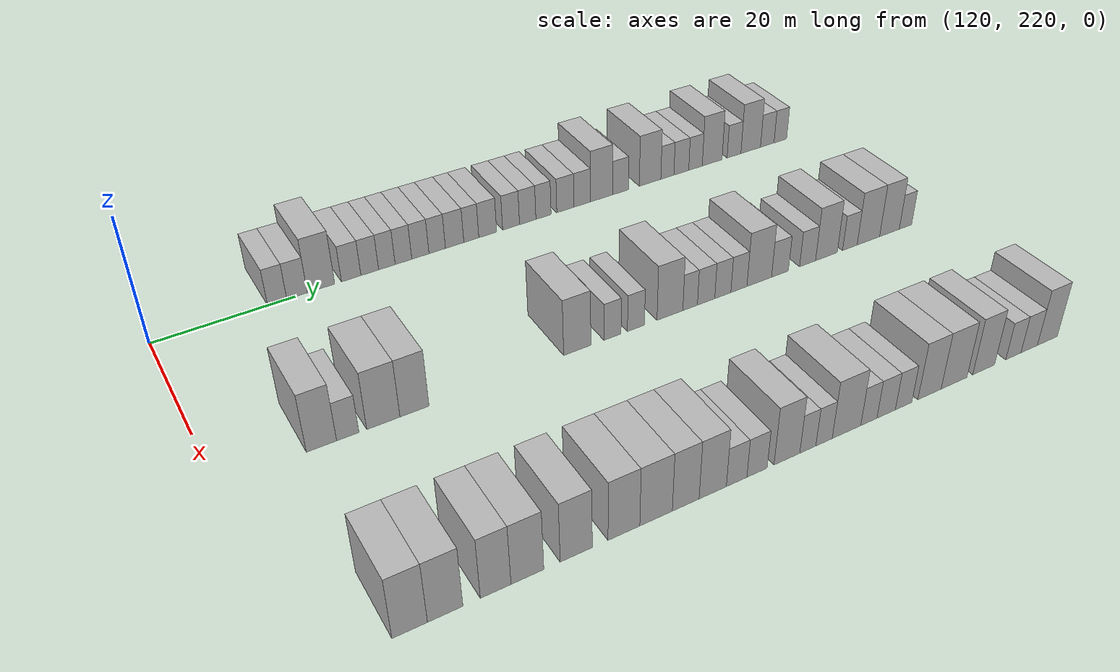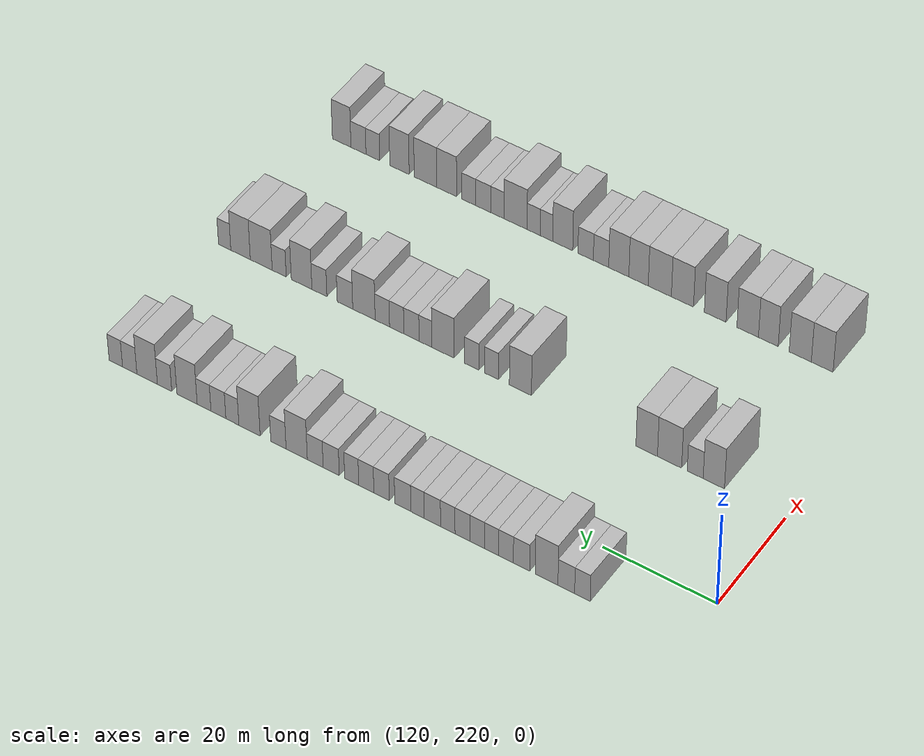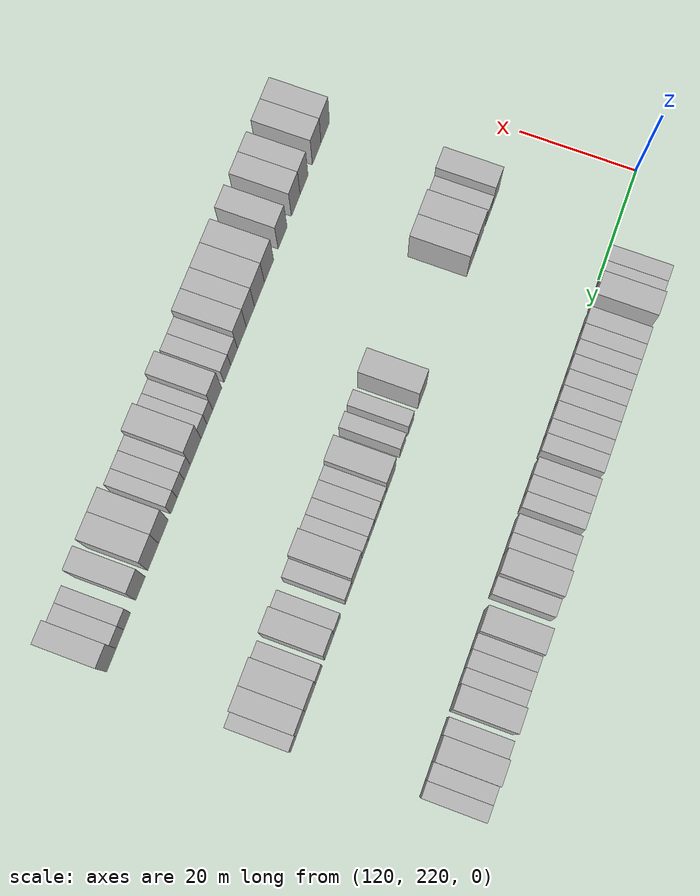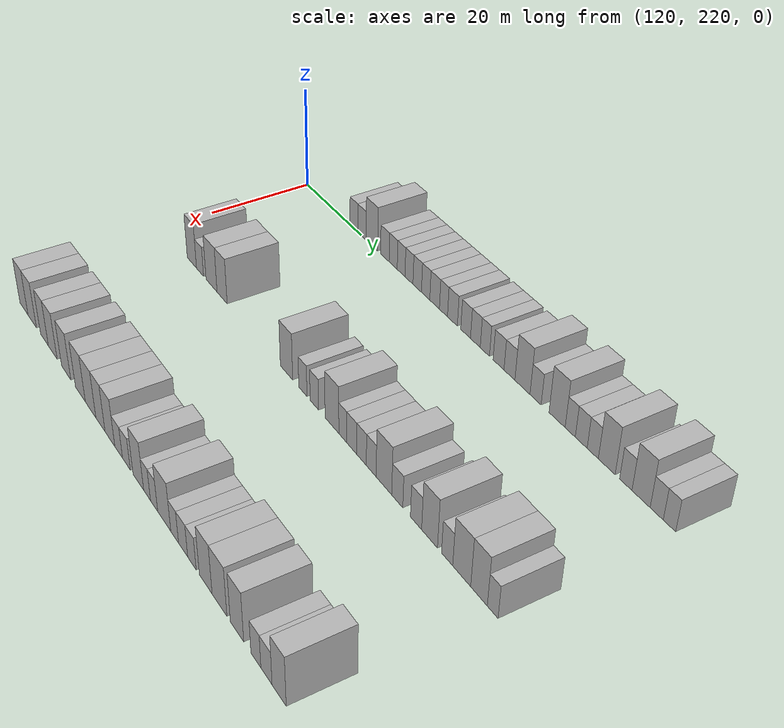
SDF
<sdf version="1.6">
 <world name="default">
  <model name="building_857">
   <static>1</static>
   <pose>115.0000 237.3899 0 0.000000 0.000000 0.000000</pose>
   <link name="link">
    <pose>0 0 3.00 0 0 0</pose>
    <collision name="collision"><geometry><box><size>10.0000 2.7430 6.0000</size></box></geometry></collision>
    <visual name="visual">
     <cast_shadows>0</cast_shadows>
     <geometry><box><size>10.0000 2.7430 6.0000</size></box></geometry>
     <material>
      <script>
       <uri>model://HANNAS_wall/materials/scripts</uri>
       <uri>model://HANNAS_wall/materials/textures</uri>
       <name>vrc/HANNAS_wall</name>
      </script>
     </material>
    </visual>
   </link>
  </model>
  <model name="building_858">
   <static>1</static>
   <pose>115.0000 240.2391 0 0.000000 0.000000 0.000000</pose>
   <link name="link">
    <pose>0 0 3.00 0 0 0</pose>
    <collision name="collision"><geometry><box><size>10.0000 2.9555 6.0000</size></box></geometry></collision>
    <visual name="visual">
     <cast_shadows>0</cast_shadows>
     <geometry><box><size>10.0000 2.9555 6.0000</size></box></geometry>
     <material>
      <script>
       <uri>model://HANNAS_wall/materials/scripts</uri>
       <uri>model://HANNAS_wall/materials/textures</uri>
       <name>vrc/HANNAS_wall</name>
      </script>
     </material>
    </visual>
   </link>
  </model>
  <model name="building_859">
   <static>1</static>
   <pose>115.0000 243.7226 0 0.000000 0.000000 0.000000</pose>
   <link name="link">
    <pose>0 0 4.50 0 0 0</pose>
    <collision name="collision"><geometry><box><size>10.0000 4.0115 9.0000</size></box></geometry></collision>
    <visual name="visual">
     <cast_shadows>0</cast_shadows>
     <geometry><box><size>10.0000 4.0115 9.0000</size></box></geometry>
     <material>
      <script>
       <uri>model://HANNAS_wall/materials/scripts</uri>
       <uri>model://HANNAS_wall/materials/textures</uri>
       <name>vrc/HANNAS_wall</name>
      </script>
     </material>
    </visual>
   </link>
  </model>
  <model name="building_860">
   <static>1</static>
   <pose>115.0000 248.1830 0 0.000000 0.000000 0.000000</pose>
   <link name="link">
    <pose>0 0 3.00 0 0 0</pose>
    <collision name="collision"><geometry><box><size>10.0000 2.9092 6.0000</size></box></geometry></collision>
    <visual name="visual">
     <cast_shadows>0</cast_shadows>
     <geometry><box><size>10.0000 2.9092 6.0000</size></box></geometry>
     <material>
      <script>
       <uri>model://HANNAS_wall/materials/scripts</uri>
       <uri>model://HANNAS_wall/materials/textures</uri>
       <name>vrc/HANNAS_wall</name>
      </script>
     </material>
    </visual>
   </link>
  </model>
  <model name="building_861">
   <static>1</static>
   <pose>115.0000 250.9758 0 0.000000 0.000000 0.000000</pose>
   <link name="link">
    <pose>0 0 3.00 0 0 0</pose>
    <collision name="collision"><geometry><box><size>10.0000 2.6764 6.0000</size></box></geometry></collision>
    <visual name="visual">
     <cast_shadows>0</cast_shadows>
     <geometry><box><size>10.0000 2.6764 6.0000</size></box></geometry>
     <material>
      <script>
       <uri>model://HANNAS_wall/materials/scripts</uri>
       <uri>model://HANNAS_wall/materials/textures</uri>
       <name>vrc/HANNAS_wall</name>
      </script>
     </material>
    </visual>
   </link>
  </model>
  <model name="building_862">
   <static>1</static>
   <pose>115.0000 253.5853 0 0.000000 0.000000 0.000000</pose>
   <link name="link">
    <pose>0 0 3.00 0 0 0</pose>
    <collision name="collision"><geometry><box><size>10.0000 2.5428 6.0000</size></box></geometry></collision>
    <visual name="visual">
     <cast_shadows>0</cast_shadows>
     <geometry><box><size>10.0000 2.5428 6.0000</size></box></geometry>
     <material>
      <script>
       <uri>model://HANNAS_wall/materials/scripts</uri>
       <uri>model://HANNAS_wall/materials/textures</uri>
       <name>vrc/HANNAS_wall</name>
      </script>
     </material>
    </visual>
   </link>
  </model>
  <model name="building_863">
   <static>1</static>
   <pose>115.0000 256.1503 0 0.000000 0.000000 0.000000</pose>
   <link name="link">
    <pose>0 0 3.00 0 0 0</pose>
    <collision name="collision"><geometry><box><size>10.0000 2.5871 6.0000</size></box></geometry></collision>
    <visual name="visual">
     <cast_shadows>0</cast_shadows>
     <geometry><box><size>10.0000 2.5871 6.0000</size></box></geometry>
     <material>
      <script>
       <uri>model://HANNAS_wall/materials/scripts</uri>
       <uri>model://HANNAS_wall/materials/textures</uri>
       <name>vrc/HANNAS_wall</name>
      </script>
     </material>
    </visual>
   </link>
  </model>
  <model name="building_864">
   <static>1</static>
   <pose>115.0000 258.7925 0 0.000000 0.000000 0.000000</pose>
   <link name="link">
    <pose>0 0 3.00 0 0 0</pose>
    <collision name="collision"><geometry><box><size>10.0000 2.6972 6.0000</size></box></geometry></collision>
    <visual name="visual">
     <cast_shadows>0</cast_shadows>
     <geometry><box><size>10.0000 2.6972 6.0000</size></box></geometry>
     <material>
      <script>
       <uri>model://HANNAS_wall/materials/scripts</uri>
       <uri>model://HANNAS_wall/materials/textures</uri>
       <name>vrc/HANNAS_wall</name>
      </script>
     </material>
    </visual>
   </link>
  </model>
  <model name="building_865">
   <static>1</static>
   <pose>115.0000 261.4494 0 0.000000 0.000000 0.000000</pose>
   <link name="link">
    <pose>0 0 3.00 0 0 0</pose>
    <collision name="collision"><geometry><box><size>10.0000 2.6167 6.0000</size></box></geometry></collision>
    <visual name="visual">
     <cast_shadows>0</cast_shadows>
     <geometry><box><size>10.0000 2.6167 6.0000</size></box></geometry>
     <material>
      <script>
       <uri>model://HANNAS_wall/materials/scripts</uri>
       <uri>model://HANNAS_wall/materials/textures</uri>
       <name>vrc/HANNAS_wall</name>
      </script>
     </material>
    </visual>
   </link>
  </model>
  <model name="building_866">
   <static>1</static>
   <pose>115.0000 264.2385 0 0.000000 0.000000 0.000000</pose>
   <link name="link">
    <pose>0 0 3.00 0 0 0</pose>
    <collision name="collision"><geometry><box><size>10.0000 2.9614 6.0000</size></box></geometry></collision>
    <visual name="visual">
     <cast_shadows>0</cast_shadows>
     <geometry><box><size>10.0000 2.9614 6.0000</size></box></geometry>
     <material>
      <script>
       <uri>model://HANNAS_wall/materials/scripts</uri>
       <uri>model://HANNAS_wall/materials/textures</uri>
       <name>vrc/HANNAS_wall</name>
      </script>
     </material>
    </visual>
   </link>
  </model>
  <model name="building_867">
   <static>1</static>
   <pose>115.0000 266.9425 0 0.000000 0.000000 0.000000</pose>
   <link name="link">
    <pose>0 0 3.00 0 0 0</pose>
    <collision name="collision"><geometry><box><size>10.0000 2.4467 6.0000</size></box></geometry></collision>
    <visual name="visual">
     <cast_shadows>0</cast_shadows>
     <geometry><box><size>10.0000 2.4467 6.0000</size></box></geometry>
     <material>
      <script>
       <uri>model://HANNAS_wall/materials/scripts</uri>
       <uri>model://HANNAS_wall/materials/textures</uri>
       <name>vrc/HANNAS_wall</name>
      </script>
     </material>
    </visual>
   </link>
  </model>
  <model name="building_868">
   <static>1</static>
   <pose>115.0000 269.6398 0 0.000000 0.000000 0.000000</pose>
   <link name="link">
    <pose>0 0 3.00 0 0 0</pose>
    <collision name="collision"><geometry><box><size>10.0000 2.9478 6.0000</size></box></geometry></collision>
    <visual name="visual">
     <cast_shadows>0</cast_shadows>
     <geometry><box><size>10.0000 2.9478 6.0000</size></box></geometry>
     <material>
      <script>
       <uri>model://HANNAS_wall/materials/scripts</uri>
       <uri>model://HANNAS_wall/materials/textures</uri>
       <name>vrc/HANNAS_wall</name>
      </script>
     </material>
    </visual>
   </link>
  </model>
  <model name="building_869">
   <static>1</static>
   <pose>115.0000 273.5316 0 0.000000 0.000000 0.000000</pose>
   <link name="link">
    <pose>0 0 3.00 0 0 0</pose>
    <collision name="collision"><geometry><box><size>10.0000 2.8359 6.0000</size></box></geometry></collision>
    <visual name="visual">
     <cast_shadows>0</cast_shadows>
     <geometry><box><size>10.0000 2.8359 6.0000</size></box></geometry>
     <material>
      <script>
       <uri>model://HANNAS_wall/materials/scripts</uri>
       <uri>model://HANNAS_wall/materials/textures</uri>
       <name>vrc/HANNAS_wall</name>
      </script>
     </material>
    </visual>
   </link>
  </model>
  <model name="building_870">
   <static>1</static>
   <pose>115.0000 276.3442 0 0.000000 0.000000 0.000000</pose>
   <link name="link">
    <pose>0 0 3.00 0 0 0</pose>
    <collision name="collision"><geometry><box><size>10.0000 2.7893 6.0000</size></box></geometry></collision>
    <visual name="visual">
     <cast_shadows>0</cast_shadows>
     <geometry><box><size>10.0000 2.7893 6.0000</size></box></geometry>
     <material>
      <script>
       <uri>model://HANNAS_wall/materials/scripts</uri>
       <uri>model://HANNAS_wall/materials/textures</uri>
       <name>vrc/HANNAS_wall</name>
      </script>
     </material>
    </visual>
   </link>
  </model>
  <model name="building_871">
   <static>1</static>
   <pose>115.0000 279.0400 0 0.000000 0.000000 0.000000</pose>
   <link name="link">
    <pose>0 0 3.00 0 0 0</pose>
    <collision name="collision"><geometry><box><size>10.0000 2.6022 6.0000</size></box></geometry></collision>
    <visual name="visual">
     <cast_shadows>0</cast_shadows>
     <geometry><box><size>10.0000 2.6022 6.0000</size></box></geometry>
     <material>
      <script>
       <uri>model://HANNAS_wall/materials/scripts</uri>
       <uri>model://HANNAS_wall/materials/textures</uri>
       <name>vrc/HANNAS_wall</name>
      </script>
     </material>
    </visual>
   </link>
  </model>
  <model name="building_872">
   <static>1</static>
   <pose>115.0000 282.8386 0 0.000000 0.000000 0.000000</pose>
   <link name="link">
    <pose>0 0 3.00 0 0 0</pose>
    <collision name="collision"><geometry><box><size>10.0000 2.9951 6.0000</size></box></geometry></collision>
    <visual name="visual">
     <cast_shadows>0</cast_shadows>
     <geometry><box><size>10.0000 2.9951 6.0000</size></box></geometry>
     <material>
      <script>
       <uri>model://HANNAS_wall/materials/scripts</uri>
       <uri>model://HANNAS_wall/materials/textures</uri>
       <name>vrc/HANNAS_wall</name>
      </script>
     </material>
    </visual>
   </link>
  </model>
  <model name="building_873">
   <static>1</static>
   <pose>115.0000 285.8130 0 0.000000 0.000000 0.000000</pose>
   <link name="link">
    <pose>0 0 3.00 0 0 0</pose>
    <collision name="collision"><geometry><box><size>10.0000 2.9536 6.0000</size></box></geometry></collision>
    <visual name="visual">
     <cast_shadows>0</cast_shadows>
     <geometry><box><size>10.0000 2.9536 6.0000</size></box></geometry>
     <material>
      <script>
       <uri>model://HANNAS_wall/materials/scripts</uri>
       <uri>model://HANNAS_wall/materials/textures</uri>
       <name>vrc/HANNAS_wall</name>
      </script>
     </material>
    </visual>
   </link>
  </model>
  <model name="building_874">
   <static>1</static>
   <pose>115.0000 289.2796 0 0.000000 0.000000 0.000000</pose>
   <link name="link">
    <pose>0 0 4.50 0 0 0</pose>
    <collision name="collision"><geometry><box><size>10.0000 3.9797 9.0000</size></box></geometry></collision>
    <visual name="visual">
     <cast_shadows>0</cast_shadows>
     <geometry><box><size>10.0000 3.9797 9.0000</size></box></geometry>
     <material>
      <script>
       <uri>model://HANNAS_wall/materials/scripts</uri>
       <uri>model://HANNAS_wall/materials/textures</uri>
       <name>vrc/HANNAS_wall</name>
      </script>
     </material>
    </visual>
   </link>
  </model>
  <model name="building_875">
   <static>1</static>
   <pose>115.0000 292.7081 0 0.000000 0.000000 0.000000</pose>
   <link name="link">
    <pose>0 0 3.00 0 0 0</pose>
    <collision name="collision"><geometry><box><size>10.0000 2.8772 6.0000</size></box></geometry></collision>
    <visual name="visual">
     <cast_shadows>0</cast_shadows>
     <geometry><box><size>10.0000 2.8772 6.0000</size></box></geometry>
     <material>
      <script>
       <uri>model://HANNAS_wall/materials/scripts</uri>
       <uri>model://HANNAS_wall/materials/textures</uri>
       <name>vrc/HANNAS_wall</name>
      </script>
     </material>
    </visual>
   </link>
  </model>
  <model name="building_876">
   <static>1</static>
   <pose>115.0000 298.1543 0 0.000000 0.000000 0.000000</pose>
   <link name="link">
    <pose>0 0 4.50 0 0 0</pose>
    <collision name="collision"><geometry><box><size>10.0000 4.0152 9.0000</size></box></geometry></collision>
    <visual name="visual">
     <cast_shadows>0</cast_shadows>
     <geometry><box><size>10.0000 4.0152 9.0000</size></box></geometry>
     <material>
      <script>
       <uri>model://HANNAS_wall/materials/scripts</uri>
       <uri>model://HANNAS_wall/materials/textures</uri>
       <name>vrc/HANNAS_wall</name>
      </script>
     </material>
    </visual>
   </link>
  </model>
  <model name="building_877">
   <static>1</static>
   <pose>115.0000 301.4001 0 0.000000 0.000000 0.000000</pose>
   <link name="link">
    <pose>0 0 3.00 0 0 0</pose>
    <collision name="collision"><geometry><box><size>10.0000 2.4764 6.0000</size></box></geometry></collision>
    <visual name="visual">
     <cast_shadows>0</cast_shadows>
     <geometry><box><size>10.0000 2.4764 6.0000</size></box></geometry>
     <material>
      <script>
       <uri>model://HANNAS_wall/materials/scripts</uri>
       <uri>model://HANNAS_wall/materials/textures</uri>
       <name>vrc/HANNAS_wall</name>
      </script>
     </material>
    </visual>
   </link>
  </model>
  <model name="building_878">
   <static>1</static>
   <pose>115.0000 304.0548 0 0.000000 0.000000 0.000000</pose>
   <link name="link">
    <pose>0 0 3.00 0 0 0</pose>
    <collision name="collision"><geometry><box><size>10.0000 2.8332 6.0000</size></box></geometry></collision>
    <visual name="visual">
     <cast_shadows>0</cast_shadows>
     <geometry><box><size>10.0000 2.8332 6.0000</size></box></geometry>
     <material>
      <script>
       <uri>model://HANNAS_wall/materials/scripts</uri>
       <uri>model://HANNAS_wall/materials/textures</uri>
       <name>vrc/HANNAS_wall</name>
      </script>
     </material>
    </visual>
   </link>
  </model>
  <model name="building_879">
   <static>1</static>
   <pose>115.0000 306.7871 0 0.000000 0.000000 0.000000</pose>
   <link name="link">
    <pose>0 0 3.00 0 0 0</pose>
    <collision name="collision"><geometry><box><size>10.0000 2.6313 6.0000</size></box></geometry></collision>
    <visual name="visual">
     <cast_shadows>0</cast_shadows>
     <geometry><box><size>10.0000 2.6313 6.0000</size></box></geometry>
     <material>
      <script>
       <uri>model://HANNAS_wall/materials/scripts</uri>
       <uri>model://HANNAS_wall/materials/textures</uri>
       <name>vrc/HANNAS_wall</name>
      </script>
     </material>
    </visual>
   </link>
  </model>
  <model name="building_880">
   <static>1</static>
   <pose>115.0000 310.0401 0 0.000000 0.000000 0.000000</pose>
   <link name="link">
    <pose>0 0 4.50 0 0 0</pose>
    <collision name="collision"><geometry><box><size>10.0000 3.8747 9.0000</size></box></geometry></collision>
    <visual name="visual">
     <cast_shadows>0</cast_shadows>
     <geometry><box><size>10.0000 3.8747 9.0000</size></box></geometry>
     <material>
      <script>
       <uri>model://HANNAS_wall/materials/scripts</uri>
       <uri>model://HANNAS_wall/materials/textures</uri>
       <name>vrc/HANNAS_wall</name>
      </script>
     </material>
    </visual>
   </link>
  </model>
  <model name="building_881">
   <static>1</static>
   <pose>115.0000 314.3609 0 0.000000 0.000000 0.000000</pose>
   <link name="link">
    <pose>0 0 3.00 0 0 0</pose>
    <collision name="collision"><geometry><box><size>10.0000 2.7669 6.0000</size></box></geometry></collision>
    <visual name="visual">
     <cast_shadows>0</cast_shadows>
     <geometry><box><size>10.0000 2.7669 6.0000</size></box></geometry>
     <material>
      <script>
       <uri>model://HANNAS_wall/materials/scripts</uri>
       <uri>model://HANNAS_wall/materials/textures</uri>
       <name>vrc/HANNAS_wall</name>
      </script>
     </material>
    </visual>
   </link>
  </model>
  <model name="building_882">
   <static>1</static>
   <pose>115.0000 317.7253 0 0.000000 0.000000 0.000000</pose>
   <link name="link">
    <pose>0 0 4.50 0 0 0</pose>
    <collision name="collision"><geometry><box><size>10.0000 3.9618 9.0000</size></box></geometry></collision>
    <visual name="visual">
     <cast_shadows>0</cast_shadows>
     <geometry><box><size>10.0000 3.9618 9.0000</size></box></geometry>
     <material>
      <script>
       <uri>model://HANNAS_wall/materials/scripts</uri>
       <uri>model://HANNAS_wall/materials/textures</uri>
       <name>vrc/HANNAS_wall</name>
      </script>
     </material>
    </visual>
   </link>
  </model>
  <model name="building_883">
   <static>1</static>
   <pose>115.0000 321.1003 0 0.000000 0.000000 0.000000</pose>
   <link name="link">
    <pose>0 0 3.00 0 0 0</pose>
    <collision name="collision"><geometry><box><size>10.0000 2.7882 6.0000</size></box></geometry></collision>
    <visual name="visual">
     <cast_shadows>0</cast_shadows>
     <geometry><box><size>10.0000 2.7882 6.0000</size></box></geometry>
     <material>
      <script>
       <uri>model://HANNAS_wall/materials/scripts</uri>
       <uri>model://HANNAS_wall/materials/textures</uri>
       <name>vrc/HANNAS_wall</name>
      </script>
     </material>
    </visual>
   </link>
  </model>
  <model name="building_884">
   <static>1</static>
   <pose>115.0000 323.7933 0 0.000000 0.000000 0.000000</pose>
   <link name="link">
    <pose>0 0 3.00 0 0 0</pose>
    <collision name="collision"><geometry><box><size>10.0000 2.5979 6.0000</size></box></geometry></collision>
    <visual name="visual">
     <cast_shadows>0</cast_shadows>
     <geometry><box><size>10.0000 2.5979 6.0000</size></box></geometry>
     <material>
      <script>
       <uri>model://HANNAS_wall/materials/scripts</uri>
       <uri>model://HANNAS_wall/materials/textures</uri>
       <name>vrc/HANNAS_wall</name>
      </script>
     </material>
    </visual>
   </link>
  </model>
  <model name="building_1082">
   <static>1</static>
   <pose>145.0000 232.7837 0 0.000000 0.000000 0.000000</pose>
   <link name="link">
    <pose>0 0 4.50 0 0 0</pose>
    <collision name="collision"><geometry><box><size>10.0000 3.7882 9.0000</size></box></geometry></collision>
    <visual name="visual">
     <cast_shadows>0</cast_shadows>
     <geometry><box><size>10.0000 3.7882 9.0000</size></box></geometry>
     <material>
      <script>
       <uri>model://HANNAS_wall/materials/scripts</uri>
       <uri>model://HANNAS_wall/materials/textures</uri>
       <name>vrc/HANNAS_wall</name>
      </script>
     </material>
    </visual>
   </link>
  </model>
  <model name="building_1083">
   <static>1</static>
   <pose>145.0000 236.1016 0 0.000000 0.000000 0.000000</pose>
   <link name="link">
    <pose>0 0 3.00 0 0 0</pose>
    <collision name="collision"><geometry><box><size>10.0000 2.8476 6.0000</size></box></geometry></collision>
    <visual name="visual">
     <cast_shadows>0</cast_shadows>
     <geometry><box><size>10.0000 2.8476 6.0000</size></box></geometry>
     <material>
      <script>
       <uri>model://HANNAS_wall/materials/scripts</uri>
       <uri>model://HANNAS_wall/materials/textures</uri>
       <name>vrc/HANNAS_wall</name>
      </script>
     </material>
    </visual>
   </link>
  </model>
  <model name="building_1084">
   <static>1</static>
   <pose>145.0000 240.6982 0 0.000000 0.000000 0.000000</pose>
   <link name="link">
    <pose>0 0 4.50 0 0 0</pose>
    <collision name="collision"><geometry><box><size>10.0000 4.3457 9.0000</size></box></geometry></collision>
    <visual name="visual">
     <cast_shadows>0</cast_shadows>
     <geometry><box><size>10.0000 4.3457 9.0000</size></box></geometry>
     <material>
      <script>
       <uri>model://HANNAS_wall/materials/scripts</uri>
       <uri>model://HANNAS_wall/materials/textures</uri>
       <name>vrc/HANNAS_wall</name>
      </script>
     </material>
    </visual>
   </link>
  </model>
  <model name="building_1085">
   <static>1</static>
   <pose>145.0000 244.8110 0 0.000000 0.000000 0.000000</pose>
   <link name="link">
    <pose>0 0 4.50 0 0 0</pose>
    <collision name="collision"><geometry><box><size>10.0000 3.8800 9.0000</size></box></geometry></collision>
    <visual name="visual">
     <cast_shadows>0</cast_shadows>
     <geometry><box><size>10.0000 3.8800 9.0000</size></box></geometry>
     <material>
      <script>
       <uri>model://HANNAS_wall/materials/scripts</uri>
       <uri>model://HANNAS_wall/materials/textures</uri>
       <name>vrc/HANNAS_wall</name>
      </script>
     </material>
    </visual>
   </link>
  </model>
  <model name="building_1086">
   <static>1</static>
   <pose>145.0000 267.9073 0 0.000000 0.000000 0.000000</pose>
   <link name="link">
    <pose>0 0 4.50 0 0 0</pose>
    <collision name="collision"><geometry><box><size>10.0000 4.1042 9.0000</size></box></geometry></collision>
    <visual name="visual">
     <cast_shadows>0</cast_shadows>
     <geometry><box><size>10.0000 4.1042 9.0000</size></box></geometry>
     <material>
      <script>
       <uri>model://HANNAS_wall/materials/scripts</uri>
       <uri>model://HANNAS_wall/materials/textures</uri>
       <name>vrc/HANNAS_wall</name>
      </script>
     </material>
    </visual>
   </link>
  </model>
  <model name="building_1087">
   <static>1</static>
   <pose>145.0000 273.2808 0 0.000000 0.000000 0.000000</pose>
   <link name="link">
    <pose>0 0 3.00 0 0 0</pose>
    <collision name="collision"><geometry><box><size>10.0000 2.6428 6.0000</size></box></geometry></collision>
    <visual name="visual">
     <cast_shadows>0</cast_shadows>
     <geometry><box><size>10.0000 2.6428 6.0000</size></box></geometry>
     <material>
      <script>
       <uri>model://HANNAS_wall/materials/scripts</uri>
       <uri>model://HANNAS_wall/materials/textures</uri>
       <name>vrc/HANNAS_wall</name>
      </script>
     </material>
    </visual>
   </link>
  </model>
  <model name="building_1088">
   <static>1</static>
   <pose>145.0000 276.9431 0 0.000000 0.000000 0.000000</pose>
   <link name="link">
    <pose>0 0 3.00 0 0 0</pose>
    <collision name="collision"><geometry><box><size>10.0000 2.6817 6.0000</size></box></geometry></collision>
    <visual name="visual">
     <cast_shadows>0</cast_shadows>
     <geometry><box><size>10.0000 2.6817 6.0000</size></box></geometry>
     <material>
      <script>
       <uri>model://HANNAS_wall/materials/scripts</uri>
       <uri>model://HANNAS_wall/materials/textures</uri>
       <name>vrc/HANNAS_wall</name>
      </script>
     </material>
    </visual>
   </link>
  </model>
  <model name="building_1089">
   <static>1</static>
   <pose>145.0000 282.3769 0 0.000000 0.000000 0.000000</pose>
   <link name="link">
    <pose>0 0 4.50 0 0 0</pose>
    <collision name="collision"><geometry><box><size>10.0000 4.1860 9.0000</size></box></geometry></collision>
    <visual name="visual">
     <cast_shadows>0</cast_shadows>
     <geometry><box><size>10.0000 4.1860 9.0000</size></box></geometry>
     <material>
      <script>
       <uri>model://HANNAS_wall/materials/scripts</uri>
       <uri>model://HANNAS_wall/materials/textures</uri>
       <name>vrc/HANNAS_wall</name>
      </script>
     </material>
    </visual>
   </link>
  </model>
  <model name="building_1090">
   <static>1</static>
   <pose>145.0000 285.6719 0 0.000000 0.000000 0.000000</pose>
   <link name="link">
    <pose>0 0 3.00 0 0 0</pose>
    <collision name="collision"><geometry><box><size>10.0000 2.4039 6.0000</size></box></geometry></collision>
    <visual name="visual">
     <cast_shadows>0</cast_shadows>
     <geometry><box><size>10.0000 2.4039 6.0000</size></box></geometry>
     <material>
      <script>
       <uri>model://HANNAS_wall/materials/scripts</uri>
       <uri>model://HANNAS_wall/materials/textures</uri>
       <name>vrc/HANNAS_wall</name>
      </script>
     </material>
    </visual>
   </link>
  </model>
  <model name="building_1091">
   <static>1</static>
   <pose>145.0000 288.3167 0 0.000000 0.000000 0.000000</pose>
   <link name="link">
    <pose>0 0 3.00 0 0 0</pose>
    <collision name="collision"><geometry><box><size>10.0000 2.8856 6.0000</size></box></geometry></collision>
    <visual name="visual">
     <cast_shadows>0</cast_shadows>
     <geometry><box><size>10.0000 2.8856 6.0000</size></box></geometry>
     <material>
      <script>
       <uri>model://HANNAS_wall/materials/scripts</uri>
       <uri>model://HANNAS_wall/materials/textures</uri>
       <name>vrc/HANNAS_wall</name>
      </script>
     </material>
    </visual>
   </link>
  </model>
  <model name="building_1092">
   <static>1</static>
   <pose>145.0000 291.1226 0 0.000000 0.000000 0.000000</pose>
   <link name="link">
    <pose>0 0 3.00 0 0 0</pose>
    <collision name="collision"><geometry><box><size>10.0000 2.7263 6.0000</size></box></geometry></collision>
    <visual name="visual">
     <cast_shadows>0</cast_shadows>
     <geometry><box><size>10.0000 2.7263 6.0000</size></box></geometry>
     <material>
      <script>
       <uri>model://HANNAS_wall/materials/scripts</uri>
       <uri>model://HANNAS_wall/materials/textures</uri>
       <name>vrc/HANNAS_wall</name>
      </script>
     </material>
    </visual>
   </link>
  </model>
  <model name="building_1093">
   <static>1</static>
   <pose>145.0000 293.8618 0 0.000000 0.000000 0.000000</pose>
   <link name="link">
    <pose>0 0 3.00 0 0 0</pose>
    <collision name="collision"><geometry><box><size>10.0000 2.7520 6.0000</size></box></geometry></collision>
    <visual name="visual">
     <cast_shadows>0</cast_shadows>
     <geometry><box><size>10.0000 2.7520 6.0000</size></box></geometry>
     <material>
      <script>
       <uri>model://HANNAS_wall/materials/scripts</uri>
       <uri>model://HANNAS_wall/materials/textures</uri>
       <name>vrc/HANNAS_wall</name>
      </script>
     </material>
    </visual>
   </link>
  </model>
  <model name="building_1094">
   <static>1</static>
   <pose>145.0000 297.3820 0 0.000000 0.000000 0.000000</pose>
   <link name="link">
    <pose>0 0 4.50 0 0 0</pose>
    <collision name="collision"><geometry><box><size>10.0000 4.2884 9.0000</size></box></geometry></collision>
    <visual name="visual">
     <cast_shadows>0</cast_shadows>
     <geometry><box><size>10.0000 4.2884 9.0000</size></box></geometry>
     <material>
      <script>
       <uri>model://HANNAS_wall/materials/scripts</uri>
       <uri>model://HANNAS_wall/materials/textures</uri>
       <name>vrc/HANNAS_wall</name>
      </script>
     </material>
    </visual>
   </link>
  </model>
  <model name="building_1095">
   <static>1</static>
   <pose>145.0000 301.0168 0 0.000000 0.000000 0.000000</pose>
   <link name="link">
    <pose>0 0 3.00 0 0 0</pose>
    <collision name="collision"><geometry><box><size>10.0000 2.9813 6.0000</size></box></geometry></collision>
    <visual name="visual">
     <cast_shadows>0</cast_shadows>
     <geometry><box><size>10.0000 2.9813 6.0000</size></box></geometry>
     <material>
      <script>
       <uri>model://HANNAS_wall/materials/scripts</uri>
       <uri>model://HANNAS_wall/materials/textures</uri>
       <name>vrc/HANNAS_wall</name>
      </script>
     </material>
    </visual>
   </link>
  </model>
  <model name="building_1096">
   <static>1</static>
   <pose>145.0000 305.9564 0 0.000000 0.000000 0.000000</pose>
   <link name="link">
    <pose>0 0 3.00 0 0 0</pose>
    <collision name="collision"><geometry><box><size>10.0000 2.8980 6.0000</size></box></geometry></collision>
    <visual name="visual">
     <cast_shadows>0</cast_shadows>
     <geometry><box><size>10.0000 2.8980 6.0000</size></box></geometry>
     <material>
      <script>
       <uri>model://HANNAS_wall/materials/scripts</uri>
       <uri>model://HANNAS_wall/materials/textures</uri>
       <name>vrc/HANNAS_wall</name>
      </script>
     </material>
    </visual>
   </link>
  </model>
  <model name="building_1097">
   <static>1</static>
   <pose>145.0000 309.4022 0 0.000000 0.000000 0.000000</pose>
   <link name="link">
    <pose>0 0 4.50 0 0 0</pose>
    <collision name="collision"><geometry><box><size>10.0000 3.9936 9.0000</size></box></geometry></collision>
    <visual name="visual">
     <cast_shadows>0</cast_shadows>
     <geometry><box><size>10.0000 3.9936 9.0000</size></box></geometry>
     <material>
      <script>
       <uri>model://HANNAS_wall/materials/scripts</uri>
       <uri>model://HANNAS_wall/materials/textures</uri>
       <name>vrc/HANNAS_wall</name>
      </script>
     </material>
    </visual>
   </link>
  </model>
  <model name="building_1098">
   <static>1</static>
   <pose>145.0000 313.7652 0 0.000000 0.000000 0.000000</pose>
   <link name="link">
    <pose>0 0 3.00 0 0 0</pose>
    <collision name="collision"><geometry><box><size>10.0000 2.7324 6.0000</size></box></geometry></collision>
    <visual name="visual">
     <cast_shadows>0</cast_shadows>
     <geometry><box><size>10.0000 2.7324 6.0000</size></box></geometry>
     <material>
      <script>
       <uri>model://HANNAS_wall/materials/scripts</uri>
       <uri>model://HANNAS_wall/materials/textures</uri>
       <name>vrc/HANNAS_wall</name>
      </script>
     </material>
    </visual>
   </link>
  </model>
  <model name="building_1099">
   <static>1</static>
   <pose>145.0000 317.2726 0 0.000000 0.000000 0.000000</pose>
   <link name="link">
    <pose>0 0 4.50 0 0 0</pose>
    <collision name="collision"><geometry><box><size>10.0000 4.2824 9.0000</size></box></geometry></collision>
    <visual name="visual">
     <cast_shadows>0</cast_shadows>
     <geometry><box><size>10.0000 4.2824 9.0000</size></box></geometry>
     <material>
      <script>
       <uri>model://HANNAS_wall/materials/scripts</uri>
       <uri>model://HANNAS_wall/materials/textures</uri>
       <name>vrc/HANNAS_wall</name>
      </script>
     </material>
    </visual>
   </link>
  </model>
  <model name="building_1100">
   <static>1</static>
   <pose>145.0000 321.3278 0 0.000000 0.000000 0.000000</pose>
   <link name="link">
    <pose>0 0 4.50 0 0 0</pose>
    <collision name="collision"><geometry><box><size>10.0000 3.8279 9.0000</size></box></geometry></collision>
    <visual name="visual">
     <cast_shadows>0</cast_shadows>
     <geometry><box><size>10.0000 3.8279 9.0000</size></box></geometry>
     <material>
      <script>
       <uri>model://HANNAS_wall/materials/scripts</uri>
       <uri>model://HANNAS_wall/materials/textures</uri>
       <name>vrc/HANNAS_wall</name>
      </script>
     </material>
    </visual>
   </link>
  </model>
  <model name="building_1101">
   <static>1</static>
   <pose>145.0000 324.4541 0 0.000000 0.000000 0.000000</pose>
   <link name="link">
    <pose>0 0 3.00 0 0 0</pose>
    <collision name="collision"><geometry><box><size>10.0000 2.4249 6.0000</size></box></geometry></collision>
    <visual name="visual">
     <cast_shadows>0</cast_shadows>
     <geometry><box><size>10.0000 2.4249 6.0000</size></box></geometry>
     <material>
      <script>
       <uri>model://HANNAS_wall/materials/scripts</uri>
       <uri>model://HANNAS_wall/materials/textures</uri>
       <name>vrc/HANNAS_wall</name>
      </script>
     </material>
    </visual>
   </link>
  </model>
  <model name="building_1305">
   <static>1</static>
   <pose>175.0000 231.2166 0 0.000000 0.000000 0.000000</pose>
   <link name="link">
    <pose>0 0 4.50 0 0 0</pose>
    <collision name="collision"><geometry><box><size>10.0000 3.9318 9.0000</size></box></geometry></collision>
    <visual name="visual">
     <cast_shadows>0</cast_shadows>
     <geometry><box><size>10.0000 3.9318 9.0000</size></box></geometry>
     <material>
      <script>
       <uri>model://HANNAS_wall/materials/scripts</uri>
       <uri>model://HANNAS_wall/materials/textures</uri>
       <name>vrc/HANNAS_wall</name>
      </script>
     </material>
    </visual>
   </link>
  </model>
  <model name="building_1306">
   <static>1</static>
   <pose>175.0000 235.1906 0 0.000000 0.000000 0.000000</pose>
   <link name="link">
    <pose>0 0 4.50 0 0 0</pose>
    <collision name="collision"><geometry><box><size>10.0000 4.0161 9.0000</size></box></geometry></collision>
    <visual name="visual">
     <cast_shadows>0</cast_shadows>
     <geometry><box><size>10.0000 4.0161 9.0000</size></box></geometry>
     <material>
      <script>
       <uri>model://HANNAS_wall/materials/scripts</uri>
       <uri>model://HANNAS_wall/materials/textures</uri>
       <name>vrc/HANNAS_wall</name>
      </script>
     </material>
    </visual>
   </link>
  </model>
  <model name="building_1307">
   <static>1</static>
   <pose>175.0000 240.9995 0 0.000000 0.000000 0.000000</pose>
   <link name="link">
    <pose>0 0 4.50 0 0 0</pose>
    <collision name="collision"><geometry><box><size>10.0000 3.6017 9.0000</size></box></geometry></collision>
    <visual name="visual">
     <cast_shadows>0</cast_shadows>
     <geometry><box><size>10.0000 3.6017 9.0000</size></box></geometry>
     <material>
      <script>
       <uri>model://HANNAS_wall/materials/scripts</uri>
       <uri>model://HANNAS_wall/materials/textures</uri>
       <name>vrc/HANNAS_wall</name>
      </script>
     </material>
    </visual>
   </link>
  </model>
  <model name="building_1308">
   <static>1</static>
   <pose>175.0000 244.7763 0 0.000000 0.000000 0.000000</pose>
   <link name="link">
    <pose>0 0 4.50 0 0 0</pose>
    <collision name="collision"><geometry><box><size>10.0000 3.9518 9.0000</size></box></geometry></collision>
    <visual name="visual">
     <cast_shadows>0</cast_shadows>
     <geometry><box><size>10.0000 3.9518 9.0000</size></box></geometry>
     <material>
      <script>
       <uri>model://HANNAS_wall/materials/scripts</uri>
       <uri>model://HANNAS_wall/materials/textures</uri>
       <name>vrc/HANNAS_wall</name>
      </script>
     </material>
    </visual>
   </link>
  </model>
  <model name="building_1309">
   <static>1</static>
   <pose>175.0000 250.7550 0 0.000000 0.000000 0.000000</pose>
   <link name="link">
    <pose>0 0 4.50 0 0 0</pose>
    <collision name="collision"><geometry><box><size>10.0000 4.0057 9.0000</size></box></geometry></collision>
    <visual name="visual">
     <cast_shadows>0</cast_shadows>
     <geometry><box><size>10.0000 4.0057 9.0000</size></box></geometry>
     <material>
      <script>
       <uri>model://HANNAS_wall/materials/scripts</uri>
       <uri>model://HANNAS_wall/materials/textures</uri>
       <name>vrc/HANNAS_wall</name>
      </script>
     </material>
    </visual>
   </link>
  </model>
  <model name="building_1310">
   <static>1</static>
   <pose>175.0000 256.8142 0 0.000000 0.000000 0.000000</pose>
   <link name="link">
    <pose>0 0 4.50 0 0 0</pose>
    <collision name="collision"><geometry><box><size>10.0000 4.1128 9.0000</size></box></geometry></collision>
    <visual name="visual">
     <cast_shadows>0</cast_shadows>
     <geometry><box><size>10.0000 4.1128 9.0000</size></box></geometry>
     <material>
      <script>
       <uri>model://HANNAS_wall/materials/scripts</uri>
       <uri>model://HANNAS_wall/materials/textures</uri>
       <name>vrc/HANNAS_wall</name>
      </script>
     </material>
    </visual>
   </link>
  </model>
  <model name="building_1311">
   <static>1</static>
   <pose>175.0000 261.0275 0 0.000000 0.000000 0.000000</pose>
   <link name="link">
    <pose>0 0 4.50 0 0 0</pose>
    <collision name="collision"><geometry><box><size>10.0000 4.3137 9.0000</size></box></geometry></collision>
    <visual name="visual">
     <cast_shadows>0</cast_shadows>
     <geometry><box><size>10.0000 4.3137 9.0000</size></box></geometry>
     <material>
      <script>
       <uri>model://HANNAS_wall/materials/scripts</uri>
       <uri>model://HANNAS_wall/materials/textures</uri>
       <name>vrc/HANNAS_wall</name>
      </script>
     </material>
    </visual>
   </link>
  </model>
  <model name="building_1312">
   <static>1</static>
   <pose>175.0000 265.0012 0 0.000000 0.000000 0.000000</pose>
   <link name="link">
    <pose>0 0 4.50 0 0 0</pose>
    <collision name="collision"><geometry><box><size>10.0000 3.6338 9.0000</size></box></geometry></collision>
    <visual name="visual">
     <cast_shadows>0</cast_shadows>
     <geometry><box><size>10.0000 3.6338 9.0000</size></box></geometry>
     <material>
      <script>
       <uri>model://HANNAS_wall/materials/scripts</uri>
       <uri>model://HANNAS_wall/materials/textures</uri>
       <name>vrc/HANNAS_wall</name>
      </script>
     </material>
    </visual>
   </link>
  </model>
  <model name="building_1313">
   <static>1</static>
   <pose>175.0000 268.7103 0 0.000000 0.000000 0.000000</pose>
   <link name="link">
    <pose>0 0 4.50 0 0 0</pose>
    <collision name="collision"><geometry><box><size>10.0000 3.7844 9.0000</size></box></geometry></collision>
    <visual name="visual">
     <cast_shadows>0</cast_shadows>
     <geometry><box><size>10.0000 3.7844 9.0000</size></box></geometry>
     <material>
      <script>
       <uri>model://HANNAS_wall/materials/scripts</uri>
       <uri>model://HANNAS_wall/materials/textures</uri>
       <name>vrc/HANNAS_wall</name>
      </script>
     </material>
    </visual>
   </link>
  </model>
  <model name="building_1314">
   <static>1</static>
   <pose>175.0000 272.0570 0 0.000000 0.000000 0.000000</pose>
   <link name="link">
    <pose>0 0 3.00 0 0 0</pose>
    <collision name="collision"><geometry><box><size>10.0000 2.9091 6.0000</size></box></geometry></collision>
    <visual name="visual">
     <cast_shadows>0</cast_shadows>
     <geometry><box><size>10.0000 2.9091 6.0000</size></box></geometry>
     <material>
      <script>
       <uri>model://HANNAS_wall/materials/scripts</uri>
       <uri>model://HANNAS_wall/materials/textures</uri>
       <name>vrc/HANNAS_wall</name>
      </script>
     </material>
    </visual>
   </link>
  </model>
  <model name="building_1315">
   <static>1</static>
   <pose>175.0000 274.9679 0 0.000000 0.000000 0.000000</pose>
   <link name="link">
    <pose>0 0 3.00 0 0 0</pose>
    <collision name="collision"><geometry><box><size>10.0000 2.9127 6.0000</size></box></geometry></collision>
    <visual name="visual">
     <cast_shadows>0</cast_shadows>
     <geometry><box><size>10.0000 2.9127 6.0000</size></box></geometry>
     <material>
      <script>
       <uri>model://HANNAS_wall/materials/scripts</uri>
       <uri>model://HANNAS_wall/materials/textures</uri>
       <name>vrc/HANNAS_wall</name>
      </script>
     </material>
    </visual>
   </link>
  </model>
  <model name="building_1316">
   <static>1</static>
   <pose>175.0000 279.3269 0 0.000000 0.000000 0.000000</pose>
   <link name="link">
    <pose>0 0 4.50 0 0 0</pose>
    <collision name="collision"><geometry><box><size>10.0000 3.8052 9.0000</size></box></geometry></collision>
    <visual name="visual">
     <cast_shadows>0</cast_shadows>
     <geometry><box><size>10.0000 3.8052 9.0000</size></box></geometry>
     <material>
      <script>
       <uri>model://HANNAS_wall/materials/scripts</uri>
       <uri>model://HANNAS_wall/materials/textures</uri>
       <name>vrc/HANNAS_wall</name>
      </script>
     </material>
    </visual>
   </link>
  </model>
  <model name="building_1317">
   <static>1</static>
   <pose>175.0000 282.4367 0 0.000000 0.000000 0.000000</pose>
   <link name="link">
    <pose>0 0 3.00 0 0 0</pose>
    <collision name="collision"><geometry><box><size>10.0000 2.4145 6.0000</size></box></geometry></collision>
    <visual name="visual">
     <cast_shadows>0</cast_shadows>
     <geometry><box><size>10.0000 2.4145 6.0000</size></box></geometry>
     <material>
      <script>
       <uri>model://HANNAS_wall/materials/scripts</uri>
       <uri>model://HANNAS_wall/materials/textures</uri>
       <name>vrc/HANNAS_wall</name>
      </script>
     </material>
    </visual>
   </link>
  </model>
  <model name="building_1318">
   <static>1</static>
   <pose>175.0000 284.8860 0 0.000000 0.000000 0.000000</pose>
   <link name="link">
    <pose>0 0 3.00 0 0 0</pose>
    <collision name="collision"><geometry><box><size>10.0000 2.4840 6.0000</size></box></geometry></collision>
    <visual name="visual">
     <cast_shadows>0</cast_shadows>
     <geometry><box><size>10.0000 2.4840 6.0000</size></box></geometry>
     <material>
      <script>
       <uri>model://HANNAS_wall/materials/scripts</uri>
       <uri>model://HANNAS_wall/materials/textures</uri>
       <name>vrc/HANNAS_wall</name>
      </script>
     </material>
    </visual>
   </link>
  </model>
  <model name="building_1319">
   <static>1</static>
   <pose>175.0000 288.3474 0 0.000000 0.000000 0.000000</pose>
   <link name="link">
    <pose>0 0 4.50 0 0 0</pose>
    <collision name="collision"><geometry><box><size>10.0000 4.4388 9.0000</size></box></geometry></collision>
    <visual name="visual">
     <cast_shadows>0</cast_shadows>
     <geometry><box><size>10.0000 4.4388 9.0000</size></box></geometry>
     <material>
      <script>
       <uri>model://HANNAS_wall/materials/scripts</uri>
       <uri>model://HANNAS_wall/materials/textures</uri>
       <name>vrc/HANNAS_wall</name>
      </script>
     </material>
    </visual>
   </link>
  </model>
  <model name="building_1320">
   <static>1</static>
   <pose>175.0000 291.8447 0 0.000000 0.000000 0.000000</pose>
   <link name="link">
    <pose>0 0 3.00 0 0 0</pose>
    <collision name="collision"><geometry><box><size>10.0000 2.5558 6.0000</size></box></geometry></collision>
    <visual name="visual">
     <cast_shadows>0</cast_shadows>
     <geometry><box><size>10.0000 2.5558 6.0000</size></box></geometry>
     <material>
      <script>
       <uri>model://HANNAS_wall/materials/scripts</uri>
       <uri>model://HANNAS_wall/materials/textures</uri>
       <name>vrc/HANNAS_wall</name>
      </script>
     </material>
    </visual>
   </link>
  </model>
  <model name="building_1321">
   <static>1</static>
   <pose>175.0000 294.5978 0 0.000000 0.000000 0.000000</pose>
   <link name="link">
    <pose>0 0 3.00 0 0 0</pose>
    <collision name="collision"><geometry><box><size>10.0000 2.9503 6.0000</size></box></geometry></collision>
    <visual name="visual">
     <cast_shadows>0</cast_shadows>
     <geometry><box><size>10.0000 2.9503 6.0000</size></box></geometry>
     <material>
      <script>
       <uri>model://HANNAS_wall/materials/scripts</uri>
       <uri>model://HANNAS_wall/materials/textures</uri>
       <name>vrc/HANNAS_wall</name>
      </script>
     </material>
    </visual>
   </link>
  </model>
  <model name="building_1322">
   <static>1</static>
   <pose>175.0000 297.4111 0 0.000000 0.000000 0.000000</pose>
   <link name="link">
    <pose>0 0 3.00 0 0 0</pose>
    <collision name="collision"><geometry><box><size>10.0000 2.6762 6.0000</size></box></geometry></collision>
    <visual name="visual">
     <cast_shadows>0</cast_shadows>
     <geometry><box><size>10.0000 2.6762 6.0000</size></box></geometry>
     <material>
      <script>
       <uri>model://HANNAS_wall/materials/scripts</uri>
       <uri>model://HANNAS_wall/materials/textures</uri>
       <name>vrc/HANNAS_wall</name>
      </script>
     </material>
    </visual>
   </link>
  </model>
  <model name="building_1323">
   <static>1</static>
   <pose>175.0000 301.6924 0 0.000000 0.000000 0.000000</pose>
   <link name="link">
    <pose>0 0 4.50 0 0 0</pose>
    <collision name="collision"><geometry><box><size>10.0000 3.8864 9.0000</size></box></geometry></collision>
    <visual name="visual">
     <cast_shadows>0</cast_shadows>
     <geometry><box><size>10.0000 3.8864 9.0000</size></box></geometry>
     <material>
      <script>
       <uri>model://HANNAS_wall/materials/scripts</uri>
       <uri>model://HANNAS_wall/materials/textures</uri>
       <name>vrc/HANNAS_wall</name>
      </script>
     </material>
    </visual>
   </link>
  </model>
  <model name="building_1324">
   <static>1</static>
   <pose>175.0000 305.8374 0 0.000000 0.000000 0.000000</pose>
   <link name="link">
    <pose>0 0 4.50 0 0 0</pose>
    <collision name="collision"><geometry><box><size>10.0000 4.4036 9.0000</size></box></geometry></collision>
    <visual name="visual">
     <cast_shadows>0</cast_shadows>
     <geometry><box><size>10.0000 4.4036 9.0000</size></box></geometry>
     <material>
      <script>
       <uri>model://HANNAS_wall/materials/scripts</uri>
       <uri>model://HANNAS_wall/materials/textures</uri>
       <name>vrc/HANNAS_wall</name>
      </script>
     </material>
    </visual>
   </link>
  </model>
  <model name="building_1325">
   <static>1</static>
   <pose>175.0000 310.9469 0 0.000000 0.000000 0.000000</pose>
   <link name="link">
    <pose>0 0 4.50 0 0 0</pose>
    <collision name="collision"><geometry><box><size>10.0000 3.8155 9.0000</size></box></geometry></collision>
    <visual name="visual">
     <cast_shadows>0</cast_shadows>
     <geometry><box><size>10.0000 3.8155 9.0000</size></box></geometry>
     <material>
      <script>
       <uri>model://HANNAS_wall/materials/scripts</uri>
       <uri>model://HANNAS_wall/materials/textures</uri>
       <name>vrc/HANNAS_wall</name>
      </script>
     </material>
    </visual>
   </link>
  </model>
  <model name="building_1326">
   <static>1</static>
   <pose>175.0000 316.2154 0 0.000000 0.000000 0.000000</pose>
   <link name="link">
    <pose>0 0 3.00 0 0 0</pose>
    <collision name="collision"><geometry><box><size>10.0000 2.7215 6.0000</size></box></geometry></collision>
    <visual name="visual">
     <cast_shadows>0</cast_shadows>
     <geometry><box><size>10.0000 2.7215 6.0000</size></box></geometry>
     <material>
      <script>
       <uri>model://HANNAS_wall/materials/scripts</uri>
       <uri>model://HANNAS_wall/materials/textures</uri>
       <name>vrc/HANNAS_wall</name>
      </script>
     </material>
    </visual>
   </link>
  </model>
  <model name="building_1327">
   <static>1</static>
   <pose>175.0000 319.0698 0 0.000000 0.000000 0.000000</pose>
   <link name="link">
    <pose>0 0 3.00 0 0 0</pose>
    <collision name="collision"><geometry><box><size>10.0000 2.9872 6.0000</size></box></geometry></collision>
    <visual name="visual">
     <cast_shadows>0</cast_shadows>
     <geometry><box><size>10.0000 2.9872 6.0000</size></box></geometry>
     <material>
      <script>
       <uri>model://HANNAS_wall/materials/scripts</uri>
       <uri>model://HANNAS_wall/materials/textures</uri>
       <name>vrc/HANNAS_wall</name>
      </script>
     </material>
    </visual>
   </link>
  </model>
  <model name="building_1328">
   <static>1</static>
   <pose>175.0000 322.4081 0 0.000000 0.000000 0.000000</pose>
   <link name="link">
    <pose>0 0 4.50 0 0 0</pose>
    <collision name="collision"><geometry><box><size>10.0000 3.6894 9.0000</size></box></geometry></collision>
    <visual name="visual">
     <cast_shadows>0</cast_shadows>
     <geometry><box><size>10.0000 3.6894 9.0000</size></box></geometry>
     <material>
      <script>
       <uri>model://HANNAS_wall/materials/scripts</uri>
       <uri>model://HANNAS_wall/materials/textures</uri>
       <name>vrc/HANNAS_wall</name>
      </script>
     </material>
    </visual>
   </link>
  </model>
 </world>
</sdf>
